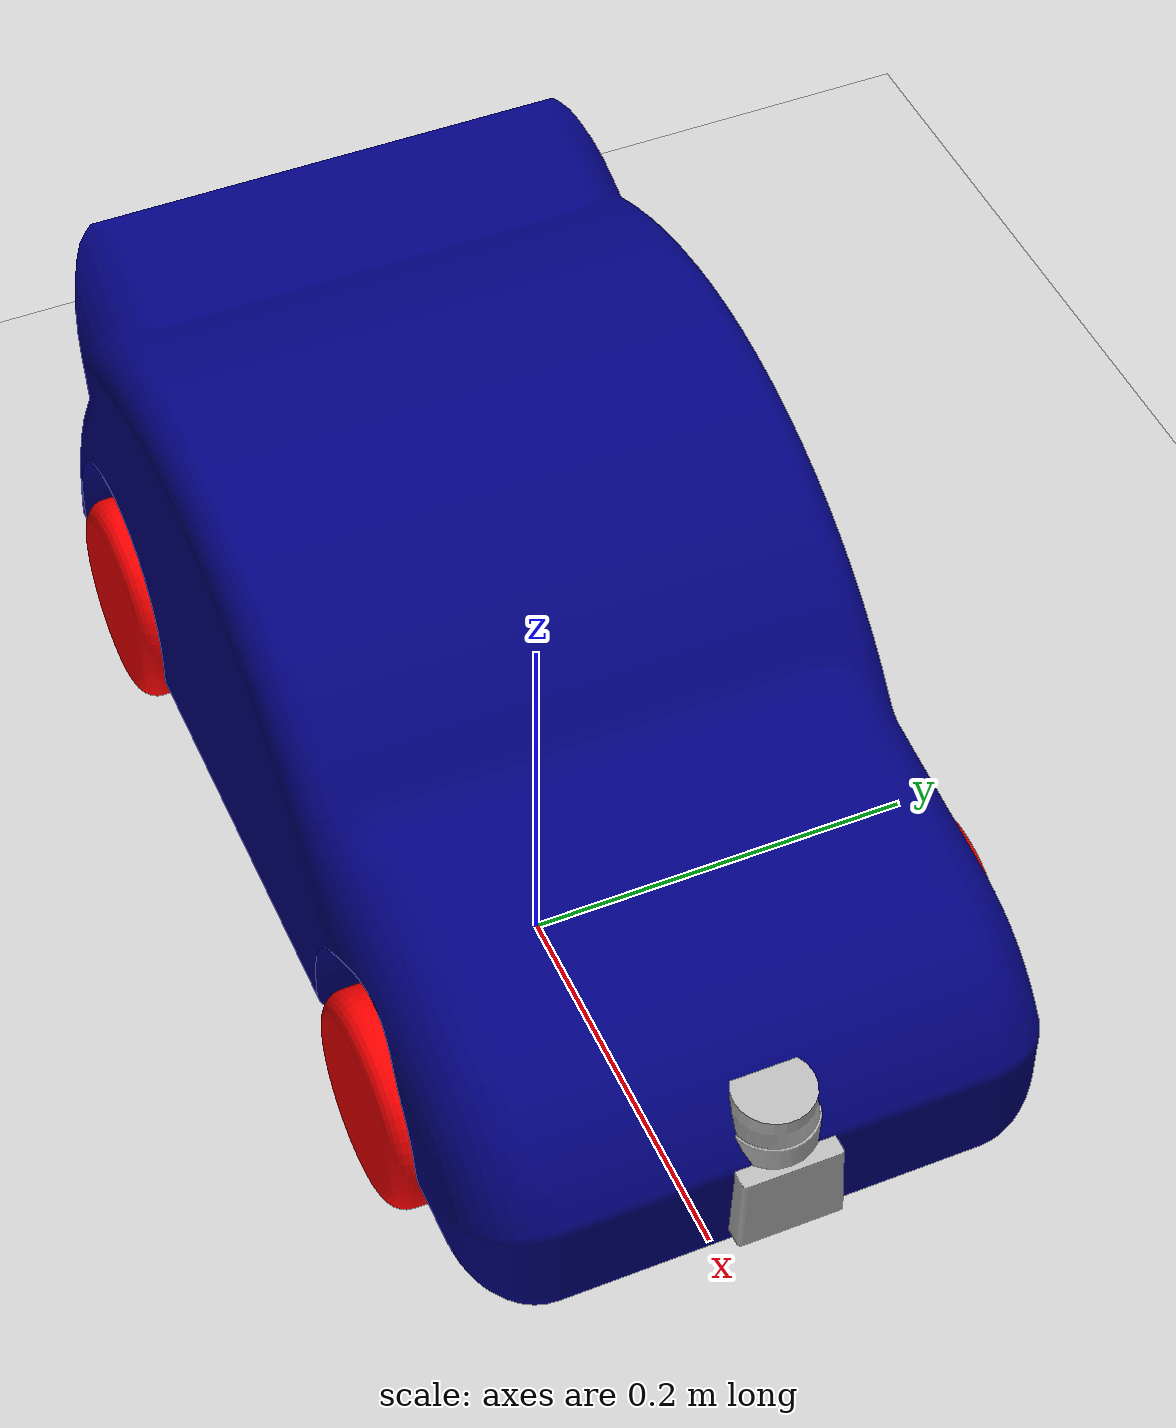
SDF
<?xml version="1.0" ?>
<sdf version="1.10">
    <world name="car_world">
        <physics name="1ms" type="ignored">
            <max_step_size>0.001</max_step_size>
            <real_time_factor>1.0</real_time_factor>
        </physics>
        <plugin
            filename="libgz-sim-physics-system.so"
            name="gz::sim::systems::Physics">
        </plugin>
        <plugin
            filename="libgz-sim-user-commands-system.so"
            name="gz::sim::systems::UserCommands">
        </plugin>
        <plugin
            filename="libgz-sim-scene-broadcaster-system.so"
            name="gz::sim::systems::SceneBroadcaster">
        </plugin>

        <light type="directional" name="sun">
            <cast_shadows>true</cast_shadows>
            <pose>0 0 10 0 0 0</pose>
            <diffuse>0.8 0.8 0.8 1</diffuse>
            <specular>0.2 0.2 0.2 1</specular>
            <attenuation>
                <range>1000</range>
                <constant>0.9</constant>
                <linear>0.01</linear>
                <quadratic>0.001</quadratic>
            </attenuation>
            <direction>-0.5 0.1 -0.9</direction>
        </light>

<!--         Set the coordinates for the world origin-->
        <spherical_coordinates>
          <surface_model>EARTH_WGS84</surface_model>
          <world_frame_orientation>ENU</world_frame_orientation>
          <latitude_deg>0.0</latitude_deg>
          <longitude_deg>0.0</longitude_deg>
          <elevation>0</elevation>
          <heading_deg>0</heading_deg>
        </spherical_coordinates>

	    <!-- RACE TRACK ____________________________________________________ -->
        <model name="ground_plane">
            <static>true</static>
            <link name="link">
                <collision name="collision">
                <geometry>
                    <plane>
                    <normal>0 0 1</normal>
                    </plane>
                </geometry>
                </collision>
                <visual name="visual">
                <geometry>
                    <plane>
                    <normal>0 0 1</normal>
                    <size>500 500</size>
                    </plane>
                </geometry>
                <material>
                    <ambient>0.8 0.8 0.8 1</ambient>
                    <diffuse>0.8 0.8 0.8 1</diffuse>
                    <specular>0.8 0.8 0.8 1</specular>
                </material>
                </visual>
            </link>
        </model>

        <!-- RACE CAR ______________________________________________________ -->
        <include>
            <uri>model://src/traxxas_4x4_zoomer/traxxas_4x4_zoomer_description/sdf/car.sdf</uri>
        </include>

        <!-- Moving Forward-->
        <plugin filename="libgz-sim-triggered-publisher-system.so"
        name="gz::sim::systems::TriggeredPublisher">
            <input type="gz.msgs.Int32" topic="/keyboard/keypress">
                <match field="data">16777235</match>
            </input>
            <output type="gz.msgs.Twist" topic="/cmd_vel">
                linear: {x: 1.5}, angular: {z: 0.0}
            </output>
        </plugin>

        <!-- Twist Right-->
        <plugin filename="libgz-sim-triggered-publisher-system.so"
        name="gz::sim::systems::TriggeredPublisher">
            <input type="gz.msgs.Int32" topic="/keyboard/keypress">
                <match field="data">16777236</match>
            </input>
            <output type="gz.msgs.Twist" topic="/cmd_vel">
                linear: {x: 1.5}, angular: {z: -1.5}
            </output>
        </plugin>

        <!-- Moving Back-->
        <plugin filename="libgz-sim-triggered-publisher-system.so"
        name="gz::sim::systems::TriggeredPublisher">
            <input type="gz.msgs.Int32" topic="/keyboard/keypress">
                <match field="data">16777237</match>
            </input>
            <output type="gz.msgs.Twist" topic="/cmd_vel">
                linear: {x: -1.5}, angular: {z: 0}
            </output>
        </plugin>

        <!-- Twist Left-->
        <plugin filename="libgz-sim-triggered-publisher-system.so"
        name="gz::sim::systems::TriggeredPublisher">
            <input type="gz.msgs.Int32" topic="/keyboard/keypress">
                <match field="data">16777234</match>
            </input>
            <output type="gz.msgs.Twist" topic="/cmd_vel">
                linear: {x: 1.5}, angular: {z: 1.5}
            </output>
        </plugin>

        </world>
</sdf>

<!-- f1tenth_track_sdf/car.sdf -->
<sdf version="1.10">
	<model name="f1tenth">
		<static>false</static>
		<pose>0 0 0.1 0 0 0</pose>

		<!-- CHASSIS______________________________________________________________________________________________________ -->
		<link name="chassis">
			<sensor name="imu_sensor" type="imu">
				<always_on>1</always_on>
				<update_rate>1</update_rate>
				<visualize>true</visualize>
				<topic>imu</topic>
			</sensor>

			<sensor name="navsat" type="navsat">
			  <always_on>1</always_on>
			  <topic>navsat</topic>
			</sensor>

			<pose relative_to='__model__'>0 0 0 0 0 3.14</pose>
			<visual name="chassis_visual">
				<geometry>
					<mesh><uri>file://f1tenth_track_sdf/chassis.stl</uri><scale>0.1 0.1 0.1</scale></mesh>
				</geometry>
				<material>
					<ambient>0.0 0.0 0.5 1</ambient>
					<diffuse>0.0 0.0 0.5 1</diffuse>
					<specular>0 0 0 1</specular>
				</material>
			</visual>
			<inertial> <!--inertial properties of the link mass, inertia matix-->
				<mass>4</mass>
				<inertia>
					<ixx>0.010609</ixx>
					<ixy>0</ixy>
					<ixz>0</ixz>
					<iyy>0.050409</iyy>
					<iyz>0</iyz>
					<izz>0.05865</izz>
				</inertia>
			</inertial>
			<collision name='chassis_collision'>
				<pose>0 0 1 0 0 0</pose>
				<geometry>
					<box>
						<size>0.5 0.3 0.2</size>
					</box>
				</geometry>
			</collision>

		</link>

		<!-- LIDAR SENSOR  _________________________________________________________________________________________________ -->

		<link name="lidar">
			<pose relative_to='chassis'>-0.25 0 0.05 0 0 3.14</pose>
			<visual name="lidar_visual">
				<geometry>
					<mesh><uri>file://f1tenth_track_sdf/lidar.stl</uri><scale>0.1 0.1 0.1</scale></mesh>
				</geometry>
			</visual>
			<collision name="lidar_collision">
				<geometry>
					<sphere>
						<radius>0.02</radius>
					</sphere>
				</geometry>
			</collision>
			<sensor name='gpu_lidar' type='gpu_lidar'>"
				<pose relative_to='lidar'>0 0 0 0 0 0</pose>
				<topic>lidar</topic>
				<update_rate>10</update_rate>
				<ray>
					<scan>
						<horizontal>
							<samples>640</samples>
							<resolution>1</resolution>
							<min_angle>-2.094395</min_angle>
							<max_angle>2.094395</max_angle>
						</horizontal>
						<vertical>
							<samples>1</samples>
							<resolution>0.01</resolution>
							<min_angle>0</min_angle>
							<max_angle>0</max_angle>
						</vertical>
					</scan>
					<range>
						<min>0.08</min>
						<max>10.0</max>
						<resolution>0.01</resolution>
					</range>
				</ray>
				<always_on>1</always_on>
				<visualize>true</visualize>
			</sensor>

		</link>
		<!-- FRONT RIGHT WHEEL _____________________________________________________________________________________________ -->
		<link name="front_right_wheel">
			<pose relative_to="chassis">-0.15 0.15 0.025 -1.5707 0 0</pose>
			<visual name="fr_wheel_visual">
				<geometry>
					<mesh><uri>file://f1tenth_track_sdf/wheel.stl</uri><scale>0.1 0.1 0.1</scale></mesh>
				</geometry>
				<material>
            				<ambient>1.0 0.0 0.0 1</ambient>
            				<diffuse>1.0 0.0 0.0 1</diffuse>
            				<specular>1 1 1 1</specular>
        			</material>
			</visual>
			<inertial> <!--inertial properties of the link mass, inertia matix-->
				<mass>0.34055</mass>
				<inertia>
					<ixx>0.00026046</ixx>
					<ixy>0</ixy>
					<ixz>0</ixz>
					<iyy>0.00026046</iyy>
					<iyz>0</iyz>
					<izz>0.00041226</izz>
				</inertia>
    			</inertial>

			<collision name="front_right_wheel_collision">
				<pose>0 0 -0.02 0 0 0</pose>
				<geometry>
					<cylinder>
						<radius>0.05</radius>
						<length>0.05</length>
					</cylinder>
				</geometry>
			</collision>
		</link>

		<!-- BACK RIGHT WHEEL _____________________________________________________________________________________________ -->
		<link name="back_right_wheel">
			<pose relative_to="chassis">0.175 0.15 0.025 -1.5707 0 0</pose>
			<visual name="fr_wheel_visual">
				<geometry>
					<mesh><uri>file://f1tenth_track_sdf/wheel.stl</uri><scale>0.1 0.1 0.1</scale></mesh>
				</geometry>
				<material>
            				<ambient>1.0 0.0 0.0 1</ambient>
            				<diffuse>1.0 0.0 0.0 1</diffuse>
            				<specular>1 1 1 1</specular>
        			</material>
			</visual>
			<inertial> <!--inertial properties of the link mass, inertia matix-->
				<mass>0.34055</mass>
				<inertia>
					<ixx>0.00026046</ixx>
					<ixy>0</ixy>
					<ixz>0</ixz>
					<iyy>0.00026046</iyy>
					<iyz>0</iyz>
					<izz>0.00041226</izz>
				</inertia>
    			</inertial>

			<collision name="front_right_wheel_collision">
				<pose>0 0 -0.02 0 0 0</pose>
				<geometry>
					<cylinder>
						<radius>0.05</radius>
						<length>0.05</length>
					</cylinder>
				</geometry>
			</collision>
		</link>
		<!-- FRONT LEFT WHEEL _____________________________________________________________________________________________ -->
		<link name="front_left_wheel">
			<pose relative_to="chassis">-0.15 -0.1 0.025 -1.5707 0 0</pose>
			<visual name="fl_wheel_visual">
				<geometry>
					<mesh><uri>file://f1tenth_track_sdf/wheel.stl</uri><scale>0.1 0.1 0.1</scale></mesh>
				</geometry>
				<material>
            				<ambient>1.0 0.0 0.0 1</ambient>
            				<diffuse>1.0 0.0 0.0 1</diffuse>
            				<specular>1 1 1 1</specular>
        			</material>
			</visual>
			<inertial> <!--inertial properties of the link mass, inertia matix-->
				<mass>0.34055</mass>
				<inertia>
					<ixx>0.00026046</ixx>
					<ixy>0</ixy>
					<ixz>0</ixz>
					<iyy>0.00026046</iyy>
					<iyz>0</iyz>
					<izz>0.00041226</izz>
				</inertia>
    			</inertial>
			<collision name="front_left_wheel_collision">
				<pose>0 0 -0.025 0 0 0</pose>
				<geometry>
					<cylinder>
						<radius>0.05</radius>
						<length>0.05</length>
					</cylinder>
				</geometry>
			</collision>
		</link>

		<!-- BACK LEFT WHEEL _____________________________________________________________________________________________ -->
		<link name="back_left_wheel">
			<pose relative_to="chassis">0.175 -0.1 0.025 -1.5707 0 0</pose>
			<visual name="fl_wheel_visual">
				<geometry>
					<mesh><uri>file://f1tenth_track_sdf/wheel.stl</uri><scale>0.1 0.1 0.1</scale></mesh>

				</geometry>
				<material>
            				<ambient>1.0 0.0 0.0 1</ambient>
            				<diffuse>1.0 0.0 0.0 1</diffuse>
            				<specular>1 1 1 1</specular>
        			</material>
			</visual>
			<inertial> <!--inertial properties of the link mass, inertia matix-->
				<mass>0.34055</mass>
				<inertia>
					<ixx>0.00026046</ixx>
					<ixy>0</ixy>
					<ixz>0</ixz>
					<iyy>0.00026046</iyy>
					<iyz>0</iyz>
					<izz>0.00041226</izz>
				</inertia>
    			</inertial>
			<collision name="front_left_wheel_collision">
				<pose>0 0 -0.025 0 0 0</pose>
				<geometry>
					<cylinder>
						<radius>0.05</radius>
						<length>0.05</length>
					</cylinder>
				</geometry>
			</collision>
		</link>

		<!-- JOINTS _____________________________________________________________________________________________________ -->
		<joint name='front_right_wheel_joint' type='revolute'>
    			<pose relative_to='front_right_wheel'/>
    			<parent>chassis</parent>
    			<child>front_right_wheel</child>
    			<axis>
        			<xyz expressed_in='__model__'>0 1 0</xyz> <!--can be defined as any frame or even arbitrary frames-->
        			<limit>
            				<lower>-1.79769e+308</lower>    <!--negative infinity-->
            				<upper>1.79769e+308</upper>     <!--positive infinity-->
        			</limit>
    			</axis>
		</joint>
		<joint name='back_right_wheel_joint' type='revolute'>
    			<pose relative_to='back_right_wheel'/>
    			<parent>chassis</parent>
    			<child>back_right_wheel</child>
    			<axis>
        			<xyz expressed_in='__model__'>0 1 0</xyz> <!--can be defined as any frame or even arbitrary frames-->
        			<limit>
            				<lower>-1.79769e+308</lower>    <!--negative infinity-->
            				<upper>1.79769e+308</upper>     <!--positive infinity-->
        			</limit>
    			</axis>
		</joint>

		<joint name='front_left_wheel_joint' type='revolute'>
    			<pose relative_to='front_left_wheel'/>
    			<parent>chassis</parent>
    			<child>front_left_wheel</child>
    			<axis>
        			<xyz expressed_in='__model__'>0 1 0</xyz> <!--can be defined as any frame or even arbitrary frames-->
        			<limit>
            				<lower>-1.79769e+308</lower>    <!--negative infinity-->
            				<upper>1.79769e+308</upper>     <!--positive infinity-->
        			</limit>
    			</axis>
		</joint>

		<joint name='back_left_wheel_joint' type='revolute'>
    			<pose relative_to='back_left_wheel'/>
    			<parent>chassis</parent>
    			<child>back_left_wheel</child>
    			<axis>
        			<xyz expressed_in='__model__'>0 1 0</xyz> <!--can be defined as any frame or even arbitrary frames-->
        			<limit>
            				<lower>-1.79769e+308</lower>    <!--negative infinity-->
            				<upper>1.79769e+308</upper>     <!--positive infinity-->
        			</limit>
    			</axis>
		</joint>

		<joint name='lidar_joint' type='fixed'>
			<parent>chassis</parent>
			<child>lidar</child>
		</joint>
		<!-- PLUGINS _____________________________________________________________________________________________________ -->

		<plugin
		filename="libgz-sim-diff-drive-system.so"
		name="gz::sim::systems::DiffDrive">
			<left_joint>front_left_wheel_joint</left_joint>
			<left_joint>back_left_wheel_joint</left_joint>
			<right_joint>front_right_wheel_joint</right_joint>
			<right_joint>back_right_wheel_joint</right_joint>
			<wheel_separation>0.2</wheel_separation>
			<wheel_radius>0.05</wheel_radius>
			<odom_publish_frequency>1</odom_publish_frequency>
			<topic>cmd_vel</topic>
		</plugin>

        </model>
</sdf>
